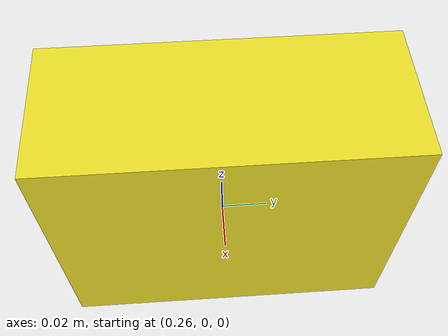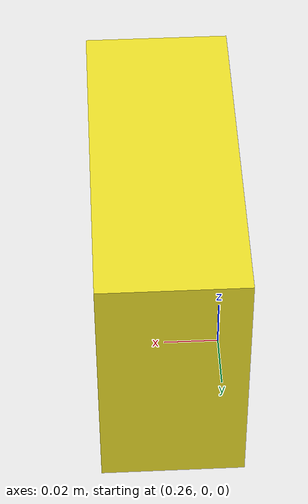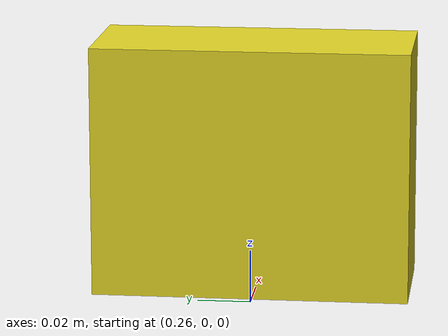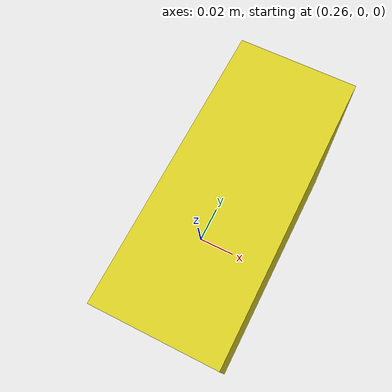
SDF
<?xml version='1.0'?>
<sdf version='1.6'>
  <model name="boxFront">
    <link name="boxFront">
      <pose>0.28 0 0.05 0 0 0</pose>
      <inertial>
        <mass>10000</mass>
      </inertial>
      <collision name="box_front_collision">
        <geometry>
          <box>
              <size>.05 .12 .095</size>
          </box>
        </geometry>
      </collision>
      <visual name="box_visual">
        <geometry>
          <box>
              <size>.05 .12 .095</size>
          </box>
        </geometry>
		<material>
		    <script>
		      <uri>file://media/materials/scripts/gazebo.material</uri>
		      <name>Gazebo/Yellow</name>
		    </script>
      	</material>
      </visual>
    </link>
  </model>
</sdf>
